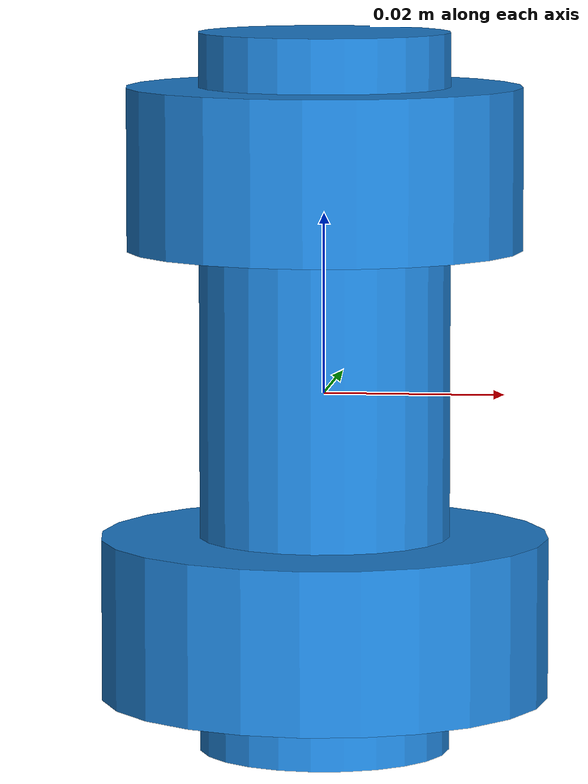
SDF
<?xml version="1.0"?>
<sdf version="1.8">
  <model name="sensoragent_part_stepped_shaft">
    <link name="part">
      <inertial>
        <mass>0.25</mass>
        <inertia>
          <ixx>0.0001650</ixx>
          <iyy>0.0001650</iyy>
          <izz>0.0000633</izz>
        </inertia>
      </inertial>
      <collision name="collision">
        <geometry><cylinder><radius>0.025</radius><length>0.080</length></cylinder></geometry>
        <surface><friction><ode><mu>1.2</mu><mu2>1.2</mu2></ode></friction></surface>
      </collision>
      <visual name="shaft">
        <geometry><cylinder><radius>0.014</radius><length>0.080</length></cylinder></geometry>
        <material><diffuse>0.12 0.52 0.86 1</diffuse></material>
      </visual>
      <visual name="lower_shoulder">
        <pose>0 0 -0.025 0 0 0</pose>
        <geometry><cylinder><radius>0.025</radius><length>0.018</length></cylinder></geometry>
        <material><diffuse>0.12 0.52 0.86 1</diffuse></material>
      </visual>
      <visual name="upper_shoulder">
        <pose>0 0 0.025 0 0 0</pose>
        <geometry><cylinder><radius>0.022</radius><length>0.018</length></cylinder></geometry>
        <material><diffuse>0.12 0.52 0.86 1</diffuse></material>
      </visual>
    </link>
  </model>
</sdf>
